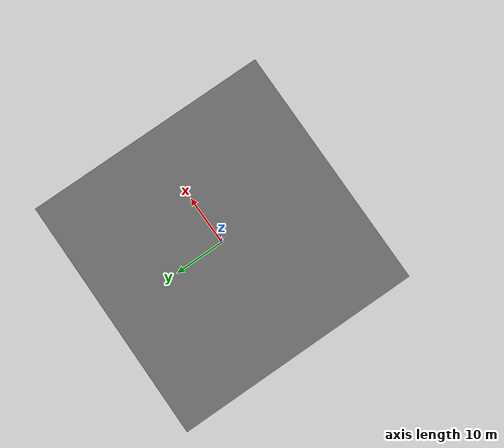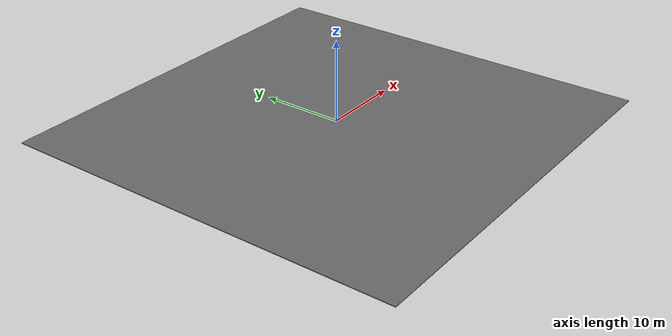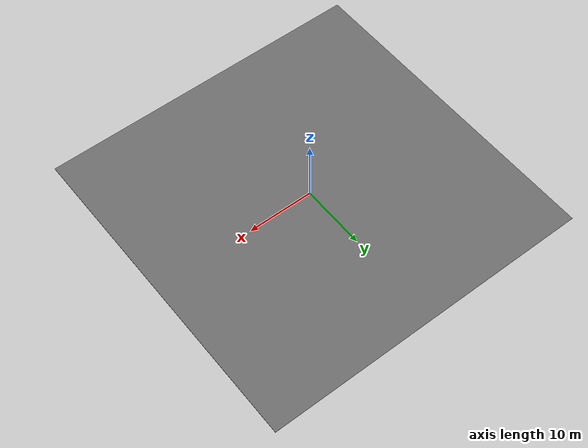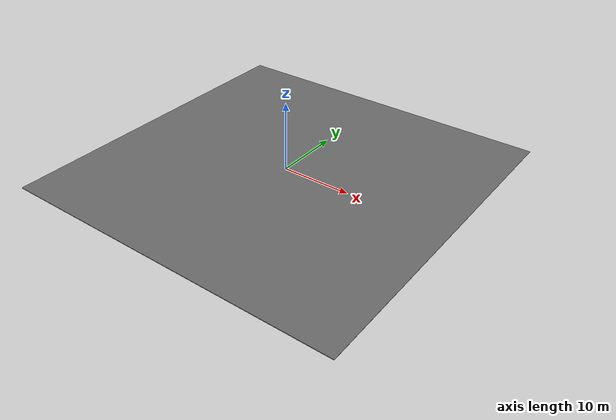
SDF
<?xml version="1.0" ?>
<sdf version="1.10">
  <world name="empty_world_gz">

    <!-- Physics configuration -->
    <physics name="default_physics" type="ode">
      <max_step_size>0.005</max_step_size>
      <real_time_factor>1.0</real_time_factor>
      <real_time_update_rate>200</real_time_update_rate>
    </physics>

    <!-- Gazebo Sim systems -->
    <plugin filename="gz-sim-physics-system"
            name="gz::sim::systems::Physics"/>

    <plugin filename="gz-sim-user-commands-system"
            name="gz::sim::systems::UserCommands"/>

    <plugin filename="gz-sim-scene-broadcaster-system"
            name="gz::sim::systems::SceneBroadcaster"/>

    <plugin filename="gz-sim-sensors-system"
            name="gz::sim::systems::Sensors">
      <render_engine>ogre2</render_engine>
    </plugin>

    <!-- Scene -->
    <scene>
      <ambient>0.6 0.6 0.6 1</ambient>
      <background>0.5 0.5 0.5 1</background>
      <shadows>false</shadows>
    </scene>

    <!-- Sun -->
    <light name="sun" type="directional">
      <cast_shadows>false</cast_shadows>
      <pose>0 0 10 0 0 0</pose>
      <direction>-0.5 0.5 -1</direction>
    </light>

    <!-- Ground -->
    <model name="ground">
      <static>true</static>
      <pose>0 0 -0.05 0 0 0</pose>

      <link name="ground_link">

        <collision name="ground_collision">
          <geometry>
            <box>
              <size>50 50 0.1</size>
            </box>
          </geometry>
          <surface>
            <friction>
              <ode>
                <mu>1.2</mu>
                <mu2>1.2</mu2>
              </ode>
            </friction>
          </surface>
        </collision>

        <visual name="ground_visual">
          <geometry>
            <box>
              <size>50 50 0.1</size>
            </box>
          </geometry>
          <material>
            <ambient>0.4 0.4 0.4 1</ambient>
            <diffuse>0.4 0.4 0.4 1</diffuse>
            <specular>0.05 0.05 0.05 1</specular>
          </material>
        </visual>

      </link>
    </model>

    <!-- Gazebo Sim GUI -->
    <gui fullscreen="0">
      <plugin filename="MinimalScene" name="3D View">
        <gz-gui>
          <title>3D View</title>
          <property type="bool" key="showTitleBar">false</property>
          <property type="string" key="state">docked</property>
        </gz-gui>
        <engine>ogre2</engine>
        <scene>scene</scene>
        <camera_pose>0 0 2.5 0 1.5708 0</camera_pose>
      </plugin>

      <plugin filename="GzSceneManager" name="Scene Manager">
        <gz-gui>
          <property key="resizable" type="bool">false</property>
          <property key="width" type="double">1</property>
          <property key="height" type="double">1</property>
          <property key="state" type="string">floating</property>
          <property key="showTitleBar" type="bool">false</property>
        </gz-gui>
      </plugin>

      <plugin filename="InteractiveViewControl" name="Interactive view control">
        <gz-gui>
          <property key="resizable" type="bool">false</property>
          <property key="width" type="double">1</property>
          <property key="height" type="double">1</property>
          <property key="state" type="string">floating</property>
          <property key="showTitleBar" type="bool">false</property>
        </gz-gui>
      </plugin>

      <plugin filename="EntityContextMenuPlugin" name="Entity context menu">
        <gz-gui>
          <property key="resizable" type="bool">false</property>
          <property key="width" type="double">1</property>
          <property key="height" type="double">1</property>
          <property key="state" type="string">floating</property>
          <property key="showTitleBar" type="bool">false</property>
        </gz-gui>
      </plugin>

      <plugin filename="CameraTracking" name="Camera Tracking">
        <gz-gui>
          <property key="width" type="double">1</property>
          <property key="height" type="double">1</property>
          <property key="state" type="string">floating</property>
          <property key="showTitleBar" type="bool">false</property>
        </gz-gui>
      </plugin>

      <plugin filename="ComponentInspector" name="Component inspector"/>
      <plugin filename="EntityTree" name="Entity tree"/>
    </gui>

  </world>
</sdf>
